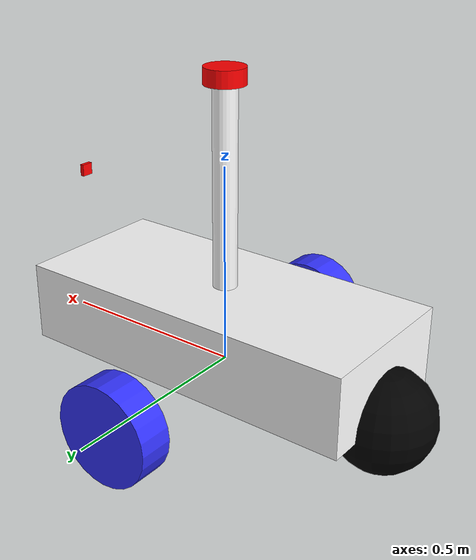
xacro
<?xml version="1.0"?>
<robot xmlns:xacro="http://www.ros.org/wiki/xacro"  name="robot">

    <xacro:arg name="use_ros2_control" default="true"/>
    <xacro:arg name="sim_mode" default="false"/>

    <xacro:include filename="robot_core.xacro"/>

    <xacro:if value="$(arg use_ros2_control)">
        <xacro:include filename="ros2_control.xacro"/>
    </xacro:if>
    <xacro:unless value="$(arg use_ros2_control)">
        <xacro:include filename="gazebo_control.xacro"/>
    </xacro:unless>
    <xacro:include filename="lidar_3d.xacro"/>
    <xacro:include filename="camera.xacro"/>
    <xacro:include filename="gps.xacro"/>
    <xacro:include filename="imu.xacro"/>
</robot>

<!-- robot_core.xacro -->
<robot xmlns:xacro="http://www.ros.org/wiki/xacro">

    <xacro:include filename="inertial_macros.xacro"/>

    <!-- COLOR -->
    <material name="white">
        <color rgba="1 1 1 1"/>
    </material>

    <material name="orange">
        <color rgba="1 0.3 0.1 1"/>
    </material>

    <material name="blue">
        <color rgba="0.2 0.2 1 1"/>
    </material>

    <material name="black">
        <color rgba="0 0 0 1"/>
    </material>

    <material name="red">
        <color rgba="1 0 0 1"/>
    </material>

    <!-- ROBOT BASE LINK-->
    <link name="base_link">

    </link>

    <joint name="base_link_joint" type="fixed">
        <parent link="base_footprint"/>
        <child link="base_link"/>
        <origin xyz="0 0 0" rpy="0 0 0"/>
    </joint>

    <!-- ROBOT BASE FOOTPRINT -->

    <link name="base_footprint">

    </link>

    <!-- ROBOT CHASSIS -->
    <joint name="chassis_joint" type="fixed">
        <parent link="base_link"/>
        <child link="chassis"/>
        <origin xyz="-0.45 0 0"/>
    </joint>

    <link name="chassis">
        <visual>
            <origin xyz="0.45 0 0.1" />
            <geometry>
                <box size="0.9 0.4 0.2"/>
            </geometry>
            <material name="white"/>
        </visual>
        <collision>
            <origin xyz="0.45 0 0.1" />
            <geometry>
                <box size="0.9 0.4 0.2"/>
            </geometry>
        </collision>
        <xacro:inertial_box mass="0.5" x="0.9" y="0.4" z="0.2">
            <origin xyz="0.45 0 0.1" rpy="0 0 0"/>
        </xacro:inertial_box>
    </link>

    <gazebo reference="chassis">
        <material>Gazebo/White</material>
    </gazebo>

    <!-- SENSOR POLE -->
    <joint name="pole_joint" type="fixed">
    	<parent link="chassis"/>
    	<child link="pole"/>
    	<origin xyz="0.45 0 0.4"/>
    </joint>

    <link name="pole">
    	<visual>
    	    <geometry>
    	    	<cylinder radius="0.03" length="0.6"/>
    	    </geometry>
    	    <material name="white"/>
    	</visual>
    	<collision>
	   <geometry>
    	    	<cylinder radius="0.03" length="0.6"/>
    	    </geometry>
    	</collision>
    	<xacro:inertial_cylinder mass="0.2" length="0.6" radius="0.03">
            <origin xyz="0 0 0" rpy="0 0 0"/>
        </xacro:inertial_cylinder>
    </link>

    <gazebo reference="pole">
        <material>Gazebo/White</material>
    </gazebo>

    <!-- LEFT WHEEL -->
    <joint name="left_wheel_joint" type="continuous">
        <parent link="base_link"/>
        <child link="left_wheel"/>
        <origin xyz="0 0.4 0" rpy="-${pi/2} 0 0"/>
        <axis xyz="0 0 1"/>
    </joint>

    <link name="left_wheel">
        <visual>
            <geometry>
                <cylinder radius="0.125" length="0.086"/>
            </geometry>
            <material name="blue"/>
        </visual>
        <collision>
            <geometry>
                <cylinder radius="0.125" length="0.086"/>
            </geometry>
        </collision>
        <xacro:inertial_cylinder mass="0.1" length="0.086" radius="0.125">
            <origin xyz="0 0 0" rpy="0 0 0"/>
        </xacro:inertial_cylinder>
    </link>

    <gazebo reference="left_wheel">
        <material>Gazebo/Blue</material>
    </gazebo>

    <!-- RIGHT WHEEL -->
    <joint name="right_wheel_joint" type="continuous">
        <parent link="base_link"/>
        <child link="right_wheel"/>
        <origin xyz="0 -0.4 0" rpy="${pi/2} 0 0"/>
        <axis xyz="0 0 -1"/>
    </joint>

    <link name="right_wheel">
        <visual>
            <geometry>
                <cylinder radius="0.125" length="0.086"/>
            </geometry>
            <material name="blue"/>
        </visual>
        <collision>
            <geometry>
                <cylinder radius="0.125" length="0.086"/>
            </geometry>
        </collision>
        <xacro:inertial_cylinder mass="0.1" length="0.086" radius="0.125">
            <origin xyz="0 0 0" rpy="0 0 0"/>
        </xacro:inertial_cylinder>
    </link>

    <gazebo reference="right_wheel">
        <material>Gazebo/Blue</material>
    </gazebo>

    <!-- CASTER WHEEL FRONT -->
    <joint name="caster_wheel_front_joint" type="fixed">
        <parent link="chassis"/>
        <child link="caster_wheel_front"/>
        <origin xyz="0.89 0 0"/>
    </joint>

    <link name="caster_wheel_front">
        <visual>
            <geometry>
                <sphere radius="0.125"/>
            </geometry>
            <material name="black"/>
        </visual>
        <collision>
            <geometry>
                <sphere radius="0.125"/>
            </geometry>
        </collision>
        <xacro:inertial_sphere mass="0.1" radius="0.125">
            <origin xyz="0 0 0" rpy="0 0 0"/>
        </xacro:inertial_sphere>
    </link>

    <gazebo reference="caster_wheel_front">
        <material>Gazebo/Black</material>
        <mu1>0.00001</mu1>
        <mu2>0.00001</mu2>
    </gazebo>

    <!-- CASTER WHEEL BACK -->

    <joint name="caster_wheel_back_joint" type="fixed">
        <parent link="chassis"/>
        <child link="caster_wheel_back"/>
        <origin xyz="0 0 0"/>
    </joint>

    <link name="caster_wheel_back">
        <visual>
            <geometry>
                <sphere radius="0.125"/>
            </geometry>
            <material name="black"/>
        </visual>
        <collision>
            <geometry>
                <sphere radius="0.125"/>
            </geometry>
        </collision>
        <xacro:inertial_sphere mass="0.1" radius="0.125">
            <origin xyz="0 0 0" rpy="0 0 0"/>
        </xacro:inertial_sphere>
    </link>

    <gazebo reference="caster_wheel_back">
        <material>Gazebo/Black</material>
        <mu1>0.00001</mu1>
        <mu2>0.00001</mu2>
    </gazebo>
</robot>

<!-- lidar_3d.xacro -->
<robot xmlns:xacro="http://www.ros.org/wiki/xacro">

    <joint name="lidar_joint" type="fixed">
        <parent link="chassis"/>
        <child link="lidar_frame"/>
        <origin xyz="0.45 0 0.71" rpy="0 0 0"/>
    </joint>

    <link name="lidar_frame">
        <visual>
            <geometry>
                <cylinder radius="0.05" length="0.04"/>
            </geometry>
            <material name="red"/>
        </visual>
        <collision>
            <geometry>
                <cylinder radius="0.05" length="0.04"/>
            </geometry>
        </collision>
        <xacro:inertial_cylinder mass="0.1" length="0.04" radius="0.05">
            <origin xyz="0 0 0" rpy="0 0 0"/>
        </xacro:inertial_cylinder>
    </link>

    <xacro:if value="$(arg sim_mode)">
        <gazebo reference="lidar_frame">
            <material>Gazebo/Red</material>
            <sensor name="lidar" type="gpu_ray">
                <pose>0 0 0 0 0 0</pose>
                <visualize>true</visualize>
                <update_rate>10</update_rate>
                <ray>
                    <scan>
                        <horizontal>
                            <samples>1024</samples>             <!-- Horizontal Angular resolution -->
                            <resolution>1</resolution>
                            <min_angle>-3.14</min_angle>
                            <max_angle>3.14</max_angle>
                        </horizontal>
                        <vertical>
                            <samples>16</samples>               <!-- Vertical Beam Multilayer -->
                            <min_angle>-0.2</min_angle>
                            <max_angle>0.1</max_angle>
                        </vertical>
                    </scan>
                    <range>
                        <min>0.3</min>
                        <max>10.0</max>
                        <resolution>0.01</resolution>
                    </range>
                </ray>
                <plugin name="lidar_controller" filename="libgazebo_ros_ray_sensor.so">
                    <ros>
                        <argument>
                            ~/out:=points
                        </argument>
                    </ros>
                    <output_type>sensor_msgs/PointCloud2</output_type>
                    <frame_name>lidar_frame</frame_name>
                    <use_sim_time>true</use_sim_time>
                </plugin>
            </sensor>
        </gazebo>
    </xacro:if>
</robot>

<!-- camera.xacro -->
<robot xmlns:xacro="http://www.ros.org/wiki/xacro">

    <joint name="camera_joint" type="fixed">
        <parent link="chassis"/>
        <child link="camera_link"/>
        <origin xyz="0.905 0 0.4" rpy="0 0 0"/>
    </joint>

    <link name="camera_link">
        <visual>
            <geometry>
                <box size="0.010 0.03 0.03"/>
            </geometry>
            <material name="red"/>
        </visual>
        <collision>
            <geometry>
                <box size="0.010 0.03 0.03"/>
            </geometry>
        </collision>
        <xacro:inertial_box mass="0.1" x="0.01" y="0.3" z="0.3">
            <origin xyz="0 0 0" rpy="0 0 0"/>
        </xacro:inertial_box>
    </link>

    <joint name="camera_optical_joint" type="fixed">
        <parent link="camera_link"/>
        <child link="camera_link_optical"/>
        <origin xyz="0 0 0" rpy="${-pi/2} 0 ${-pi/2}"/>
    </joint>

    <link name="camera_link_optical"></link>

    <xacro:if value="$(arg sim_mode)">
        <gazebo reference="camera_link">
            <material>Gazebo/Red</material>
            <sensor name="camera" type="camera">
                <pose>0 0 0 0 0 0</pose>
                <visualize>true</visualize>
                <update_rate>10</update_rate>
                <camera>
                    <horizontal>1.089</horizontal>
                    <image>
                        <format>R8G8B9</format>
                        <width>640</width>
                        <height>480</height>
                    </image>
                    <clip>
                        <near>0.05</near>
                        <far>8.0</far>
                    </clip>
                </camera>
                <plugin name="camera_controller" filename="libgazebo_ros_camera.so">
                    <frame_name>camera_link_optical</frame_name>
                </plugin>
            </sensor>
        </gazebo>
    </xacro:if>
</robot>

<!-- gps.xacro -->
<robot xmlns:xacro="http://www.ros.org/wiki/xacro">

    <joint name="gps_joint" type="fixed">
        <parent link="base_link"/>
        <child link="gps_link"/>
        <origin xyz="0 0 0.1" rpy="0 0 0"/>
    </joint>

    <link name="gps_link">
    </link>

    <xacro:if value="$(arg sim_mode)">
        <gazebo reference="gps_link">
            <sensor name="gps_sensor" type="gps">
                <always_on>true</always_on>
                <update_rate>1.0</update_rate>
                <plugin name="gps_controller" filename="libgazebo_ros_gps_sensor.so">
                    <ros>
                        <remapping>~/out:=/gps/fix</remapping>
                    </ros>
                    <frame_name>gps_link</frame_name>
                </plugin>
            </sensor>
        </gazebo>
    </xacro:if>
</robot>

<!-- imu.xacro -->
<robot xmlns:xacro="http://www.ros.org/wiki/xacro">

    <joint name="imu_joint" type="fixed">
        <parent link="base_link"/>
        <child link="imu_link"/>
        <origin xyz="0.1 0 0.1" rpy="0 0 0"/>
    </joint>

    <link name="imu_link">

    </link>

    <xacro:if value="$(arg sim_mode)">
        <gazebo reference="imu_link">
            <sensor name="imu_sensor" type="imu">
                <always_on>true</always_on>
                <update_rate>50</update_rate>
                <plugin name="gazebo_ros_imu" filename="libgazebo_ros_imu_sensor.so">
                    <ros>
                        <remapping>~/out:=/imu/data</remapping>
                    </ros>
                    <frame_name>imu_link</frame_name>
                    <gaussianNoise>0.0002</gaussianNoise>
                </plugin>
            </sensor>
        </gazebo>
    </xacro:if>
</robot>
